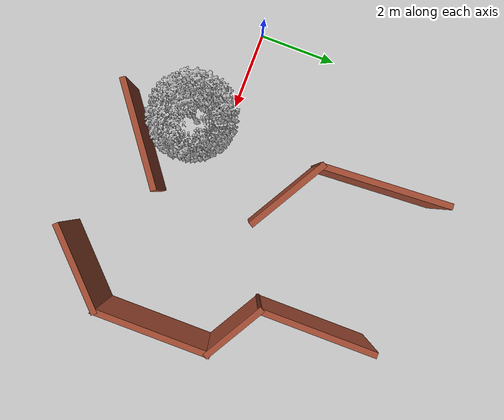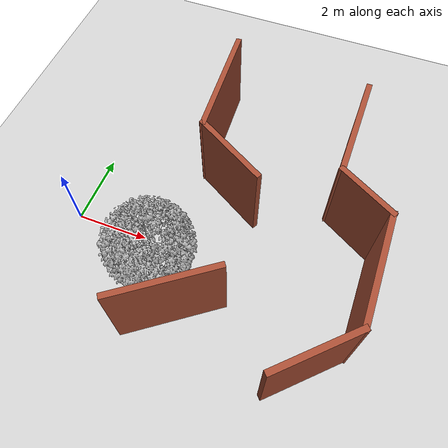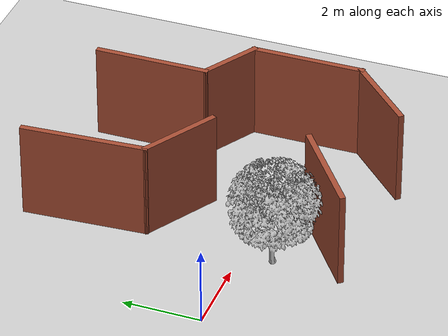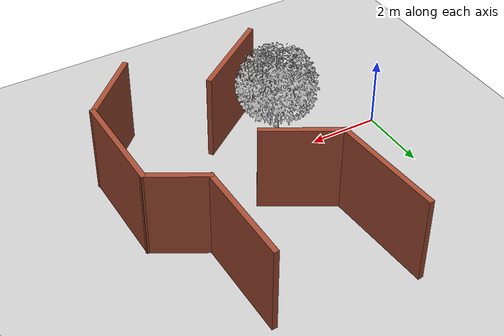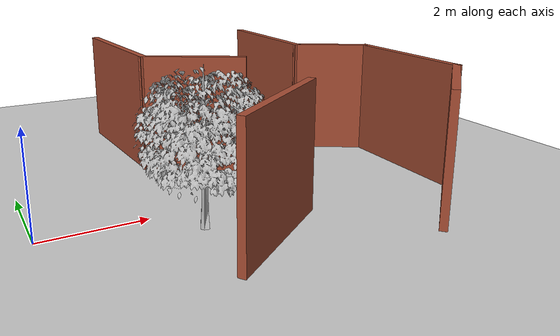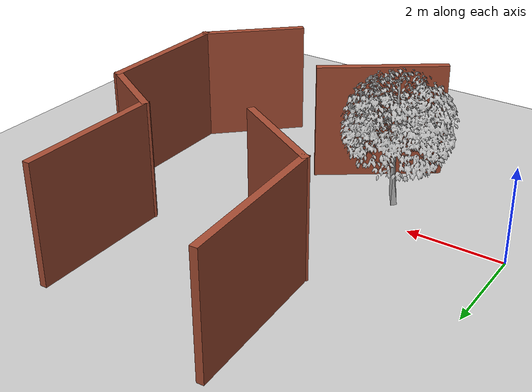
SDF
<sdf version="1.6">
 <world name="default">
  <model name="maze_rect_3">
   <pose>4e-06 -9.9e-05 0 0 -0 1.57001</pose>
   <link name="Wall_390">
    <collision name="Wall_390_Collision">
     <geometry><box><size>1.75 0.15 2.5</size></box></geometry>
     <pose>0 0 1.25 0 -0 0</pose>
    </collision>
    <visual name="Wall_390_Visual">
     <pose>0 0 1.25 0 -0 0</pose>
     <geometry><box><size>1.75 0.15 2.5</size></box></geometry>
     <material>
      <script><uri>file://media/materials/scripts/gazebo.material</uri><name>Gazebo/Bricks</name></script>
      <ambient>1 1 1 1</ambient>
     </material>
     <meta><layer>0</layer></meta>
    </visual>
    <pose>1.9423 -7.19899 0 0 -0 1.0472</pose>
   </link>
   <link name="Wall_391">
    <collision name="Wall_391_Collision">
     <geometry><box><size>3 0.15 2.5</size></box></geometry>
     <pose>0 0 1.25 0 -0 0</pose>
    </collision>
    <visual name="Wall_391_Visual">
     <pose>0 0 1.25 0 -0 0</pose>
     <geometry><box><size>3 0.15 2.5</size></box></geometry>
     <material>
      <script><uri>file://media/materials/scripts/gazebo.material</uri><name>Gazebo/Bricks</name></script>
      <ambient>1 1 1 1</ambient>
     </material>
     <meta><layer>0</layer></meta>
    </visual>
    <pose>3.76729 -6.50617 0 0 -0 0</pose>
   </link>
   <link name="Wall_431">
    <collision name="Wall_431_Collision">
     <geometry><box><size>2.25 0.15 2.5</size></box></geometry>
     <pose>0 0 1.25 0 -0 0</pose>
    </collision>
    <visual name="Wall_431_Visual">
     <pose>0 0 1.25 0 -0 0</pose>
     <geometry><box><size>2.25 0.15 2.5</size></box></geometry>
     <material>
      <script><uri>file://media/materials/scripts/gazebo.material</uri><name>Gazebo/Bricks</name></script>
      <ambient>1 1 1 1</ambient>
     </material>
     <meta><layer>0</layer></meta>
    </visual>
    <pose>1.98223 -3.7312 0 0 -0 1.0472</pose>
   </link>
   <link name="Wall_432">
    <collision name="Wall_432_Collision">
     <geometry><box><size>3.26498 0.15 2.5</size></box></geometry>
     <pose>0 0 1.25 0 -0 0</pose>
    </collision>
    <visual name="Wall_432_Visual">
     <pose>0 0 1.25 0 -0 0</pose>
     <geometry><box><size>3.26498 0.15 2.5</size></box></geometry>
     <material>
      <script><uri>file://media/materials/scripts/gazebo.material</uri><name>Gazebo/Bricks</name></script>
      <ambient>1 1 1 1</ambient>
     </material>
     <meta><layer>0</layer></meta>
    </visual>
    <pose>4.06203 -2.73054 0 0 -0 0.058675</pose>
   </link>
   <link name="Wall_448">
    <collision name="Wall_448_Collision">
     <geometry><box><size>2.31497 0.15 2.5</size></box></geometry>
     <pose>0 0 1.25 0 -0 0</pose>
    </collision>
    <visual name="Wall_448_Visual">
     <pose>0 0 1.25 0 -0 0</pose>
     <geometry><box><size>2.31497 0.15 2.5</size></box></geometry>
     <material>
      <script><uri>file://media/materials/scripts/gazebo.material</uri><name>Gazebo/Bricks</name></script>
      <ambient>1 1 1 1</ambient>
     </material>
     <meta><layer>0</layer></meta>
    </visual>
    <pose>-2.05849 -7.11201 0 0 -0 -0.804357</pose>
   </link>
   <link name="Wall_449">
    <collision name="Wall_449_Collision">
     <geometry><box><size>3 0.15 2.5</size></box></geometry>
     <pose>0 0 1.25 0 -0 0</pose>
    </collision>
    <visual name="Wall_449_Visual">
     <pose>0 0 1.25 0 -0 0</pose>
     <geometry><box><size>3 0.15 2.5</size></box></geometry>
     <material>
      <script><uri>file://media/materials/scripts/gazebo.material</uri><name>Gazebo/Bricks</name></script>
      <ambient>1 1 1 1</ambient>
     </material>
     <meta><layer>0</layer></meta>
    </visual>
    <pose>0.117295 -7.89181 0 0 -0 0</pose>
   </link>
   <link name="Wall_480">
    <collision name="Wall_480_Collision">
     <geometry><box><size>2.75519 0.15 2.5</size></box></geometry>
     <pose>0 0 1.25 0 -0 0</pose>
    </collision>
    <visual name="Wall_480_Visual">
     <pose>0 0 1.25 0 -0 0</pose>
     <geometry><box><size>2.75519 0.15 2.5</size></box></geometry>
     <material>
      <script><uri>file://media/materials/scripts/gazebo.material</uri><name>Gazebo/Bricks</name></script>
      <ambient>1 1 1 1</ambient>
     </material>
     <meta><layer>0</layer></meta>
    </visual>
    <pose>-1.79606 -3.64058 0 0 -0 2.20039</pose>
   </link>
   <static>1</static>
  </model>
  <model name="tree2_20">
   <link name="link_0">
    <inertial>
     <mass>1</mass>
     <inertia>
      <ixx>0.166667</ixx>
      <ixy>0</ixy>
      <ixz>0</ixz>
      <iyy>0.166667</iyy>
      <iyz>0</iyz>
      <izz>0.166667</izz>
     </inertia>
    </inertial>
    <pose>-0 -0 0 1.58863 -0.000294 0</pose>
    <visual name="visual">
     <geometry><mesh><uri>model://tree2/Tree.obj</uri><scale>1 1 1</scale></mesh></geometry>
    </visual>
    <collision name="collision">
     <geometry><mesh><uri>model://tree2/Tree.obj</uri><scale>1 1 1</scale></mesh></geometry>
     <surface>
      <friction>
       <ode><mu>1</mu><mu2>1</mu2><fdir1>0 0 0</fdir1><slip1>0</slip1><slip2>0</slip2></ode>
       <torsional>
        <coefficient>1</coefficient>
        <patch_radius>0</patch_radius>
        <surface_radius>0</surface_radius>
        <use_patch_radius>1</use_patch_radius>
        <ode><slip>0</slip></ode>
       </torsional>
      </friction>
      <bounce><restitution_coefficient>0</restitution_coefficient><threshold>1e+06</threshold></bounce>
      <contact>
       <collide_without_contact>0</collide_without_contact>
       <collide_without_contact_bitmask>1</collide_without_contact_bitmask>
       <collide_bitmask>1</collide_bitmask>
       <ode>
        <soft_cfm>0</soft_cfm>
        <soft_erp>0.2</soft_erp>
        <kp>1e+13</kp>
        <kd>1</kd>
        <max_vel>0.01</max_vel>
        <min_depth>0</min_depth>
       </ode>
       <bullet>
        <split_impulse>1</split_impulse>
        <split_impulse_penetration_threshold>-0.01</split_impulse_penetration_threshold>
        <soft_cfm>0</soft_cfm>
        <soft_erp>0.2</soft_erp>
        <kp>1e+13</kp>
        <kd>1</kd>
       </bullet>
      </contact>
     </surface>
    </collision>
   </link>
   <static>1</static>
   <pose>2.73275 -0.80453 0 0 -0 0</pose>
  </model>
  <model name="ground_plane">
   <static>1</static>
   <link name="link">
    <collision name="collision">
     <geometry><plane><normal>0 0 1</normal><size>100 100</size></plane></geometry>
     <surface>
      <contact><collide_bitmask>65535</collide_bitmask></contact>
      <friction><ode><mu>100</mu><mu2>50</mu2></ode></friction>
     </surface>
    </collision>
    <visual name="visual">
     <cast_shadows>0</cast_shadows>
     <geometry><plane><normal>0 0 1</normal><size>100 100</size></plane></geometry>
     <material>
      <script><uri>file://media/materials/scripts/gazebo.material</uri><name>Gazebo/Grey</name></script>
     </material>
    </visual>
   </link>
   <pose>9.31394 52.073 0 0 -0 0</pose>
  </model>
 </world>
</sdf>
